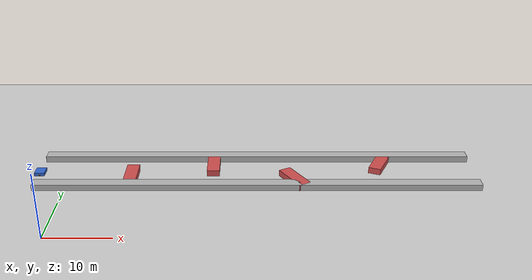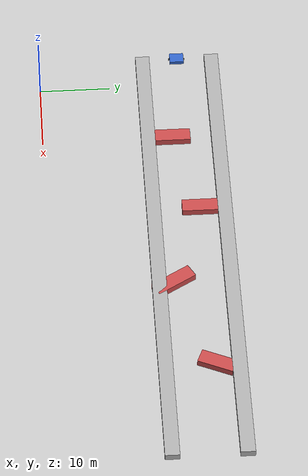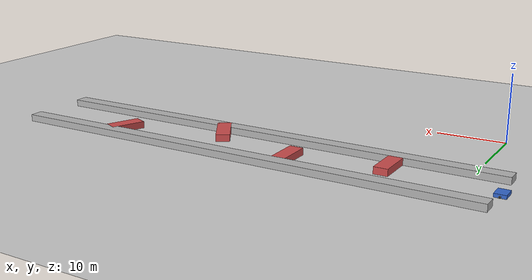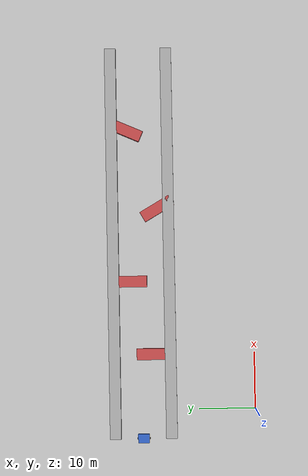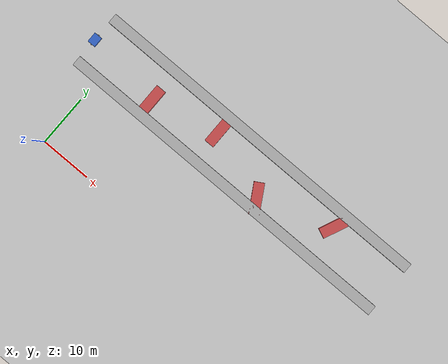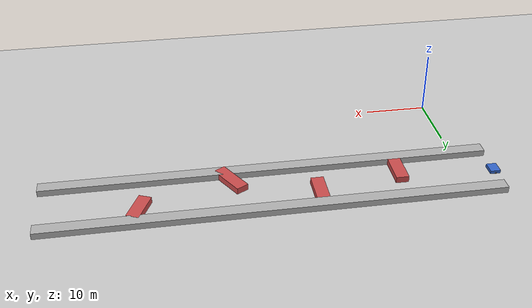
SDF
<?xml version="1.0" ?>
<sdf version="1.6">
  <world name="corridor">
    <!-- Physics -->
    <physics type="ode">
      <max_step_size>0.01</max_step_size>
      <real_time_factor>1</real_time_factor>
    </physics>
    <!-- Sun -->
    <include><uri>model://sun</uri></include>
    <!-- Ground plane -->
    <include><uri>model://ground_plane</uri></include>

    <!-- === Boundary walls forming the corridor === -->
    <!-- Top wall: IR-SIM [30, 25, 0], 70x2m -->
    <model name="top_wall">
      <static>true</static>
      <pose>30 25 0.5 0 0 0</pose>
      <link name="link">
        <collision name="c"><geometry><box><size>70 2 1</size></box></geometry></collision>
        <visual name="v"><geometry><box><size>70 2 1</size></box></geometry>
          <material><ambient>0.7 0.7 0.7 1</ambient><diffuse>0.7 0.7 0.7 1</diffuse></material>
        </visual>
      </link>
    </model>
    <!-- Bottom wall: IR-SIM [30, 15, 0], 70x2m -->
    <model name="bottom_wall">
      <static>true</static>
      <pose>30 15 0.5 0 0 0</pose>
      <link name="link">
        <collision name="c"><geometry><box><size>70 2 1</size></box></geometry></collision>
        <visual name="v"><geometry><box><size>70 2 1</size></box></geometry>
          <material><ambient>0.7 0.7 0.7 1</ambient><diffuse>0.7 0.7 0.7 1</diffuse></material>
        </visual>
      </link>
    </model>

    <!-- === Inner obstacles (matching IR-SIM positions) === -->
    <!-- Obstacle 3: [10, 18.5, 1.57], 5x2m (vertical) -->
    <model name="obs_3">
      <static>true</static>
      <pose>10 18.5 0.5 0 0 1.5707963</pose>
      <link name="link">
        <collision name="c"><geometry><box><size>5 2 1</size></box></geometry></collision>
        <visual name="v"><geometry><box><size>5 2 1</size></box></geometry>
          <material><ambient>0.8 0.3 0.3 1</ambient><diffuse>0.8 0.3 0.3 1</diffuse></material>
        </visual>
      </link>
    </model>
    <!-- Obstacle 4: [23, 21.5, 1.57], 5x2m (vertical) -->
    <model name="obs_4">
      <static>true</static>
      <pose>23 21.5 0.5 0 0 1.5707963</pose>
      <link name="link">
        <collision name="c"><geometry><box><size>5 2 1</size></box></geometry></collision>
        <visual name="v"><geometry><box><size>5 2 1</size></box></geometry>
          <material><ambient>0.8 0.3 0.3 1</ambient><diffuse>0.8 0.3 0.3 1</diffuse></material>
        </visual>
      </link>
    </model>
    <!-- Obstacle 5: [36, 17, 2.1], 6x2m (angled) -->
    <model name="obs_5">
      <static>true</static>
      <pose>36 17 0.5 0 0 2.1</pose>
      <link name="link">
        <collision name="c"><geometry><box><size>6 2 1</size></box></geometry></collision>
        <visual name="v"><geometry><box><size>6 2 1</size></box></geometry>
          <material><ambient>0.8 0.3 0.3 1</ambient><diffuse>0.8 0.3 0.3 1</diffuse></material>
        </visual>
      </link>
    </model>
    <!-- Obstacle 6: [50, 22, 4.3], 5x2m (angled) -->
    <model name="obs_6">
      <static>true</static>
      <pose>50 22 0.5 0 0 4.3</pose>
      <link name="link">
        <collision name="c"><geometry><box><size>5 2 1</size></box></geometry></collision>
        <visual name="v"><geometry><box><size>5 2 1</size></box></geometry>
          <material><ambient>0.8 0.3 0.3 1</ambient><diffuse>0.8 0.3 0.3 1</diffuse></material>
        </visual>
      </link>
    </model>

    <!-- Robot spawn: IR-SIM start [-5, 20, 0] -->
    <include>
      <uri>model://diff_robot</uri>
      <name>diff_robot</name>
      <pose>-5 20 0.25 0 0 0</pose>
    </include>
  </world>
</sdf>

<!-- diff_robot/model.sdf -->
<sdf version="1.6">
  <model name="diff_robot">
    <static>false</static>
    <link name="base_link">
      <inertial>
        <mass>50.0</mass>
        <inertia>
          <ixx>14.583</ixx><iyy>8.333</iyy><izz>22.583</izz>
          <ixy>0</ixy><ixz>0</ixz><iyz>0</iyz>
        </inertia>
      </inertial>
      <collision name="base_collision">
        <geometry>
          <box><size>1.6 2.0 0.5</size></box>
        </geometry>
      </collision>
      <visual name="base_visual">
        <geometry>
          <box><size>1.6 2.0 0.5</size></box>
        </geometry>
        <material>
          <ambient>0.2 0.4 0.8 1</ambient>
          <diffuse>0.2 0.4 0.8 1</diffuse>
        </material>
      </visual>
      <sensor name="lidar2d" type="ray">
        <pose>0.8 0 0.3 0 0 0</pose>
        <ray>
          <scan>
            <horizontal>
              <samples>100</samples>
              <resolution>1</resolution>
              <min_angle>-1.5707963</min_angle>
              <max_angle>1.5707963</max_angle>
            </horizontal>
          </scan>
          <range>
            <min>0.05</min>
            <max>10.0</max>
            <resolution>0.01</resolution>
          </range>
        </ray>
        <plugin name="lidar_plugin" filename="libgazebo_ros_ray_sensor.so">
          <ros>
            <namespace>/robot</namespace>
            <remapping>~/out:=scan</remapping>
          </ros>
          <output_type>sensor_msgs/LaserScan</output_type>
          <frame_name>base_link</frame_name>
        </plugin>
        <always_on>true</always_on>
        <update_rate>10</update_rate>
      </sensor>
    </link>
    <plugin name="diff_drive" filename="libgazebo_ros_diff_drive.so">
      <ros>
        <namespace>/robot</namespace>
      </ros>
      <left_joint>left_wheel_joint</left_joint>
      <right_joint>right_wheel_joint</right_joint>
      <wheel_separation>2.2</wheel_separation>
      <wheel_diameter>0.3</wheel_diameter>
      <max_wheel_torque>100</max_wheel_torque>
      <max_wheel_acceleration>10.0</max_wheel_acceleration>
      <command_topic>cmd_vel</command_topic>
      <odometry_topic>odom</odometry_topic>
      <odometry_frame>odom</odometry_frame>
      <robot_base_frame>base_link</robot_base_frame>
      <publish_odom>true</publish_odom>
      <publish_odom_tf>true</publish_odom_tf>
      <publish_wheel_tf>false</publish_wheel_tf>
    </plugin>
    <link name="left_wheel_link">
      <pose relative_to="base_link">0 1.1 -0.1 1.5707963 0 0</pose>
      <inertial><mass>2</mass><inertia><ixx>0.01</ixx><iyy>0.01</iyy><izz>0.01</izz></inertia></inertial>
      <collision name="collision"><geometry><cylinder><radius>0.15</radius><length>0.1</length></cylinder></geometry></collision>
      <visual name="visual"><geometry><cylinder><radius>0.15</radius><length>0.1</length></cylinder></geometry><material><ambient>0.1 0.1 0.1 1</ambient></material></visual>
    </link>
    <joint name="left_wheel_joint" type="revolute">
      <parent>base_link</parent><child>left_wheel_link</child>
      <axis><xyz>0 1 0</xyz></axis>
      <limit><lower>-1e16</lower><upper>1e16</upper></limit>
    </joint>
    <link name="right_wheel_link">
      <pose relative_to="base_link">0 -1.1 -0.1 1.5707963 0 0</pose>
      <inertial><mass>2</mass><inertia><ixx>0.01</ixx><iyy>0.01</iyy><izz>0.01</izz></inertia></inertial>
      <collision name="collision"><geometry><cylinder><radius>0.15</radius><length>0.1</length></cylinder></geometry></collision>
      <visual name="visual"><geometry><cylinder><radius>0.15</radius><length>0.1</length></cylinder></geometry><material><ambient>0.1 0.1 0.1 1</ambient></material></visual>
    </link>
    <joint name="right_wheel_joint" type="revolute">
      <parent>base_link</parent><child>right_wheel_link</child>
      <axis><xyz>0 1 0</xyz></axis>
      <limit><lower>-1e16</lower><upper>1e16</upper></limit>
    </joint>
  </model>
</sdf>
